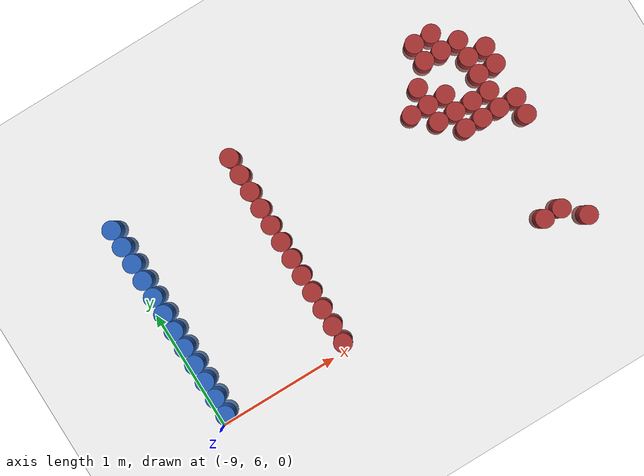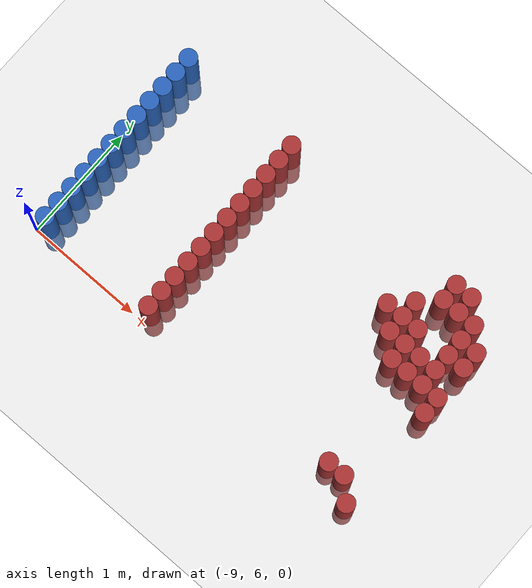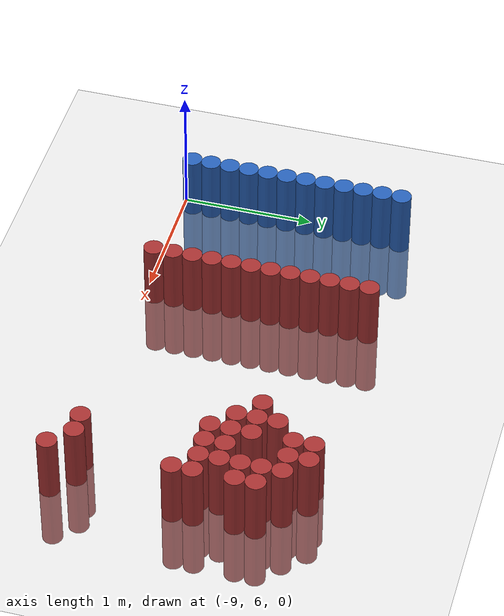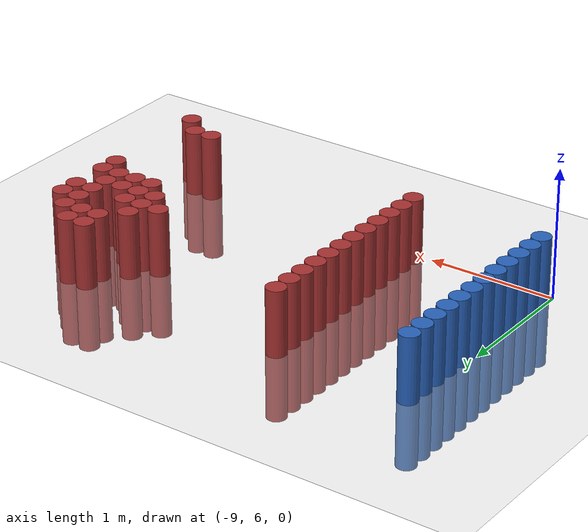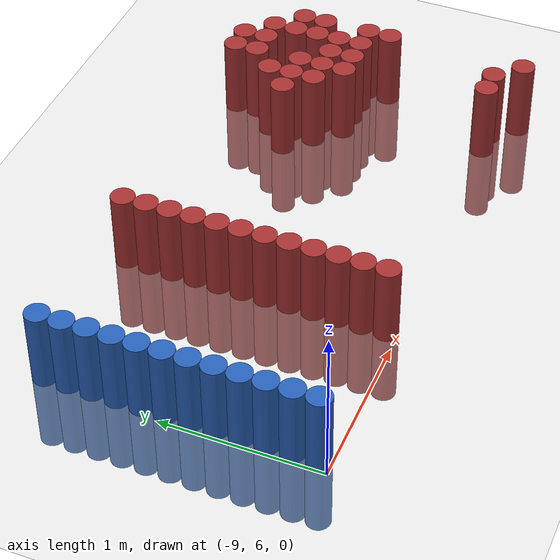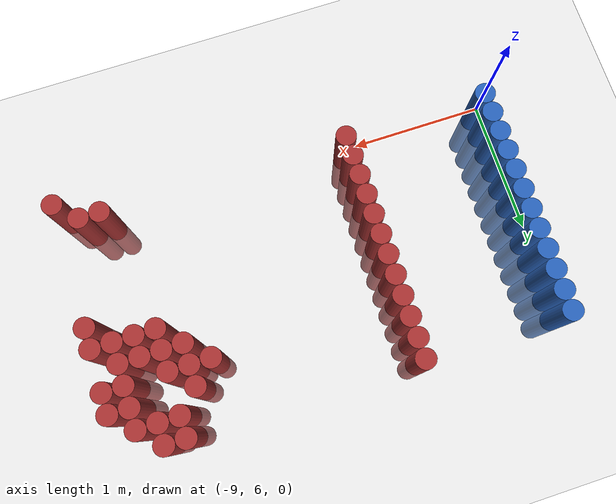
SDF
<sdf version="1.6">
 <world name="default">
  <model name="ground_plane">
   <static>1</static>
   <link name="link">
    <collision name="collision">
     <geometry><plane><normal>0 0 1</normal><size>100 100</size></plane></geometry>
     <surface><friction><ode><mu>100</mu><mu2>50</mu2></ode></friction></surface>
    </collision>
    <visual name="visual">
     <cast_shadows>0</cast_shadows>
     <geometry><plane><normal>0 0 1</normal><size>100 100</size></plane></geometry>
     <material>
      <script><uri>file://media/materials/scripts/gazebo.material</uri><name>Gazebo/Grey</name></script>
     </material>
    </visual>
   </link>
  </model>
  <model name="unit_cylinder_131">
   <static>1</static>
   <pose>-8.925000 6.075000 0.000000 0.000000 0.000000 0.000000</pose>
   <link name="link">
    <inertial>
     <mass>1</mass>
     <inertia><ixx>0.145833</ixx><ixy>0</ixy><ixz>0</ixz><iyy>0.145833</iyy><iyz>0</iyz><izz>0.125</izz></inertia>
    </inertial>
    <collision name="collision">
     <geometry><cylinder><radius>0.075000</radius><length>1</length></cylinder></geometry>
    </collision>
    <visual name="visual">
     <geometry><cylinder><radius>0.075000</radius><length>1</length></cylinder></geometry>
     <material>
      <ambient>0.152000 0.379000 0.720000 1</ambient>
      <diffuse>0.152000 0.379000 0.720000 1</diffuse>
     </material>
     <material>
      <script><name>Gazebo/Grey</name><uri>file://media/materials/scripts/gazebo.material</uri></script>
     </material>
    </visual>
   </link>
  </model>
  <model name="unit_cylinder_132">
   <static>1</static>
   <pose>-8.925000 6.225000 0.000000 0.000000 0.000000 0.000000</pose>
   <link name="link">
    <inertial>
     <mass>1</mass>
     <inertia><ixx>0.145833</ixx><ixy>0</ixy><ixz>0</ixz><iyy>0.145833</iyy><iyz>0</iyz><izz>0.125</izz></inertia>
    </inertial>
    <collision name="collision">
     <geometry><cylinder><radius>0.075000</radius><length>1</length></cylinder></geometry>
    </collision>
    <visual name="visual">
     <geometry><cylinder><radius>0.075000</radius><length>1</length></cylinder></geometry>
     <material>
      <ambient>0.152000 0.379000 0.720000 1</ambient>
      <diffuse>0.152000 0.379000 0.720000 1</diffuse>
     </material>
     <material>
      <script><name>Gazebo/Grey</name><uri>file://media/materials/scripts/gazebo.material</uri></script>
     </material>
    </visual>
   </link>
  </model>
  <model name="unit_cylinder_133">
   <static>1</static>
   <pose>-8.925000 6.375000 0.000000 0.000000 0.000000 0.000000</pose>
   <link name="link">
    <inertial>
     <mass>1</mass>
     <inertia><ixx>0.145833</ixx><ixy>0</ixy><ixz>0</ixz><iyy>0.145833</iyy><iyz>0</iyz><izz>0.125</izz></inertia>
    </inertial>
    <collision name="collision">
     <geometry><cylinder><radius>0.075000</radius><length>1</length></cylinder></geometry>
    </collision>
    <visual name="visual">
     <geometry><cylinder><radius>0.075000</radius><length>1</length></cylinder></geometry>
     <material>
      <ambient>0.152000 0.379000 0.720000 1</ambient>
      <diffuse>0.152000 0.379000 0.720000 1</diffuse>
     </material>
     <material>
      <script><name>Gazebo/Grey</name><uri>file://media/materials/scripts/gazebo.material</uri></script>
     </material>
    </visual>
   </link>
  </model>
  <model name="unit_cylinder_134">
   <static>1</static>
   <pose>-8.925000 6.525000 0.000000 0.000000 0.000000 0.000000</pose>
   <link name="link">
    <inertial>
     <mass>1</mass>
     <inertia><ixx>0.145833</ixx><ixy>0</ixy><ixz>0</ixz><iyy>0.145833</iyy><iyz>0</iyz><izz>0.125</izz></inertia>
    </inertial>
    <collision name="collision">
     <geometry><cylinder><radius>0.075000</radius><length>1</length></cylinder></geometry>
    </collision>
    <visual name="visual">
     <geometry><cylinder><radius>0.075000</radius><length>1</length></cylinder></geometry>
     <material>
      <ambient>0.152000 0.379000 0.720000 1</ambient>
      <diffuse>0.152000 0.379000 0.720000 1</diffuse>
     </material>
     <material>
      <script><name>Gazebo/Grey</name><uri>file://media/materials/scripts/gazebo.material</uri></script>
     </material>
    </visual>
   </link>
  </model>
  <model name="unit_cylinder_135">
   <static>1</static>
   <pose>-8.925000 6.675000 0.000000 0.000000 0.000000 0.000000</pose>
   <link name="link">
    <inertial>
     <mass>1</mass>
     <inertia><ixx>0.145833</ixx><ixy>0</ixy><ixz>0</ixz><iyy>0.145833</iyy><iyz>0</iyz><izz>0.125</izz></inertia>
    </inertial>
    <collision name="collision">
     <geometry><cylinder><radius>0.075000</radius><length>1</length></cylinder></geometry>
    </collision>
    <visual name="visual">
     <geometry><cylinder><radius>0.075000</radius><length>1</length></cylinder></geometry>
     <material>
      <ambient>0.152000 0.379000 0.720000 1</ambient>
      <diffuse>0.152000 0.379000 0.720000 1</diffuse>
     </material>
     <material>
      <script><name>Gazebo/Grey</name><uri>file://media/materials/scripts/gazebo.material</uri></script>
     </material>
    </visual>
   </link>
  </model>
  <model name="unit_cylinder_136">
   <static>1</static>
   <pose>-8.925000 6.825000 0.000000 0.000000 0.000000 0.000000</pose>
   <link name="link">
    <inertial>
     <mass>1</mass>
     <inertia><ixx>0.145833</ixx><ixy>0</ixy><ixz>0</ixz><iyy>0.145833</iyy><iyz>0</iyz><izz>0.125</izz></inertia>
    </inertial>
    <collision name="collision">
     <geometry><cylinder><radius>0.075000</radius><length>1</length></cylinder></geometry>
    </collision>
    <visual name="visual">
     <geometry><cylinder><radius>0.075000</radius><length>1</length></cylinder></geometry>
     <material>
      <ambient>0.152000 0.379000 0.720000 1</ambient>
      <diffuse>0.152000 0.379000 0.720000 1</diffuse>
     </material>
     <material>
      <script><name>Gazebo/Grey</name><uri>file://media/materials/scripts/gazebo.material</uri></script>
     </material>
    </visual>
   </link>
  </model>
  <model name="unit_cylinder_137">
   <static>1</static>
   <pose>-8.925000 6.975000 0.000000 0.000000 0.000000 0.000000</pose>
   <link name="link">
    <inertial>
     <mass>1</mass>
     <inertia><ixx>0.145833</ixx><ixy>0</ixy><ixz>0</ixz><iyy>0.145833</iyy><iyz>0</iyz><izz>0.125</izz></inertia>
    </inertial>
    <collision name="collision">
     <geometry><cylinder><radius>0.075000</radius><length>1</length></cylinder></geometry>
    </collision>
    <visual name="visual">
     <geometry><cylinder><radius>0.075000</radius><length>1</length></cylinder></geometry>
     <material>
      <ambient>0.152000 0.379000 0.720000 1</ambient>
      <diffuse>0.152000 0.379000 0.720000 1</diffuse>
     </material>
     <material>
      <script><name>Gazebo/Grey</name><uri>file://media/materials/scripts/gazebo.material</uri></script>
     </material>
    </visual>
   </link>
  </model>
  <model name="unit_cylinder_138">
   <static>1</static>
   <pose>-8.925000 7.125000 0.000000 0.000000 0.000000 0.000000</pose>
   <link name="link">
    <inertial>
     <mass>1</mass>
     <inertia><ixx>0.145833</ixx><ixy>0</ixy><ixz>0</ixz><iyy>0.145833</iyy><iyz>0</iyz><izz>0.125</izz></inertia>
    </inertial>
    <collision name="collision">
     <geometry><cylinder><radius>0.075000</radius><length>1</length></cylinder></geometry>
    </collision>
    <visual name="visual">
     <geometry><cylinder><radius>0.075000</radius><length>1</length></cylinder></geometry>
     <material>
      <ambient>0.152000 0.379000 0.720000 1</ambient>
      <diffuse>0.152000 0.379000 0.720000 1</diffuse>
     </material>
     <material>
      <script><name>Gazebo/Grey</name><uri>file://media/materials/scripts/gazebo.material</uri></script>
     </material>
    </visual>
   </link>
  </model>
  <model name="unit_cylinder_139">
   <static>1</static>
   <pose>-8.925000 7.275000 0.000000 0.000000 0.000000 0.000000</pose>
   <link name="link">
    <inertial>
     <mass>1</mass>
     <inertia><ixx>0.145833</ixx><ixy>0</ixy><ixz>0</ixz><iyy>0.145833</iyy><iyz>0</iyz><izz>0.125</izz></inertia>
    </inertial>
    <collision name="collision">
     <geometry><cylinder><radius>0.075000</radius><length>1</length></cylinder></geometry>
    </collision>
    <visual name="visual">
     <geometry><cylinder><radius>0.075000</radius><length>1</length></cylinder></geometry>
     <material>
      <ambient>0.152000 0.379000 0.720000 1</ambient>
      <diffuse>0.152000 0.379000 0.720000 1</diffuse>
     </material>
     <material>
      <script><name>Gazebo/Grey</name><uri>file://media/materials/scripts/gazebo.material</uri></script>
     </material>
    </visual>
   </link>
  </model>
  <model name="unit_cylinder_140">
   <static>1</static>
   <pose>-8.925000 7.425000 0.000000 0.000000 0.000000 0.000000</pose>
   <link name="link">
    <inertial>
     <mass>1</mass>
     <inertia><ixx>0.145833</ixx><ixy>0</ixy><ixz>0</ixz><iyy>0.145833</iyy><iyz>0</iyz><izz>0.125</izz></inertia>
    </inertial>
    <collision name="collision">
     <geometry><cylinder><radius>0.075000</radius><length>1</length></cylinder></geometry>
    </collision>
    <visual name="visual">
     <geometry><cylinder><radius>0.075000</radius><length>1</length></cylinder></geometry>
     <material>
      <ambient>0.152000 0.379000 0.720000 1</ambient>
      <diffuse>0.152000 0.379000 0.720000 1</diffuse>
     </material>
     <material>
      <script><name>Gazebo/Grey</name><uri>file://media/materials/scripts/gazebo.material</uri></script>
     </material>
    </visual>
   </link>
  </model>
  <model name="unit_cylinder_141">
   <static>1</static>
   <pose>-8.925000 7.575000 0.000000 0.000000 0.000000 0.000000</pose>
   <link name="link">
    <inertial>
     <mass>1</mass>
     <inertia><ixx>0.145833</ixx><ixy>0</ixy><ixz>0</ixz><iyy>0.145833</iyy><iyz>0</iyz><izz>0.125</izz></inertia>
    </inertial>
    <collision name="collision">
     <geometry><cylinder><radius>0.075000</radius><length>1</length></cylinder></geometry>
    </collision>
    <visual name="visual">
     <geometry><cylinder><radius>0.075000</radius><length>1</length></cylinder></geometry>
     <material>
      <ambient>0.152000 0.379000 0.720000 1</ambient>
      <diffuse>0.152000 0.379000 0.720000 1</diffuse>
     </material>
     <material>
      <script><name>Gazebo/Grey</name><uri>file://media/materials/scripts/gazebo.material</uri></script>
     </material>
    </visual>
   </link>
  </model>
  <model name="unit_cylinder_142">
   <static>1</static>
   <pose>-8.925000 7.725000 0.000000 0.000000 0.000000 0.000000</pose>
   <link name="link">
    <inertial>
     <mass>1</mass>
     <inertia><ixx>0.145833</ixx><ixy>0</ixy><ixz>0</ixz><iyy>0.145833</iyy><iyz>0</iyz><izz>0.125</izz></inertia>
    </inertial>
    <collision name="collision">
     <geometry><cylinder><radius>0.075000</radius><length>1</length></cylinder></geometry>
    </collision>
    <visual name="visual">
     <geometry><cylinder><radius>0.075000</radius><length>1</length></cylinder></geometry>
     <material>
      <ambient>0.152000 0.379000 0.720000 1</ambient>
      <diffuse>0.152000 0.379000 0.720000 1</diffuse>
     </material>
     <material>
      <script><name>Gazebo/Grey</name><uri>file://media/materials/scripts/gazebo.material</uri></script>
     </material>
    </visual>
   </link>
  </model>
  <model name="unit_cylinder_180">
   <static>1</static>
   <pose>-7.875000 6.075000 0.000000 0.000000 0.000000 0.000000</pose>
   <link name="link">
    <inertial>
     <mass>1</mass>
     <inertia><ixx>0.145833</ixx><ixy>0</ixy><ixz>0</ixz><iyy>0.145833</iyy><iyz>0</iyz><izz>0.125</izz></inertia>
    </inertial>
    <collision name="collision">
     <geometry><cylinder><radius>0.075000</radius><length>1</length></cylinder></geometry>
    </collision>
    <visual name="visual">
     <geometry><cylinder><radius>0.075000</radius><length>1</length></cylinder></geometry>
     <material>
      <ambient>0.648000 0.192000 0.192000 1</ambient>
      <diffuse>0.648000 0.192000 0.192000 1</diffuse>
     </material>
     <material>
      <script><name>Gazebo/Grey</name><uri>file://media/materials/scripts/gazebo.material</uri></script>
     </material>
    </visual>
   </link>
  </model>
  <model name="unit_cylinder_181">
   <static>1</static>
   <pose>-7.875000 6.225000 0.000000 0.000000 0.000000 0.000000</pose>
   <link name="link">
    <inertial>
     <mass>1</mass>
     <inertia><ixx>0.145833</ixx><ixy>0</ixy><ixz>0</ixz><iyy>0.145833</iyy><iyz>0</iyz><izz>0.125</izz></inertia>
    </inertial>
    <collision name="collision">
     <geometry><cylinder><radius>0.075000</radius><length>1</length></cylinder></geometry>
    </collision>
    <visual name="visual">
     <geometry><cylinder><radius>0.075000</radius><length>1</length></cylinder></geometry>
     <material>
      <ambient>0.648000 0.192000 0.192000 1</ambient>
      <diffuse>0.648000 0.192000 0.192000 1</diffuse>
     </material>
     <material>
      <script><name>Gazebo/Grey</name><uri>file://media/materials/scripts/gazebo.material</uri></script>
     </material>
    </visual>
   </link>
  </model>
  <model name="unit_cylinder_182">
   <static>1</static>
   <pose>-7.875000 6.375000 0.000000 0.000000 0.000000 0.000000</pose>
   <link name="link">
    <inertial>
     <mass>1</mass>
     <inertia><ixx>0.145833</ixx><ixy>0</ixy><ixz>0</ixz><iyy>0.145833</iyy><iyz>0</iyz><izz>0.125</izz></inertia>
    </inertial>
    <collision name="collision">
     <geometry><cylinder><radius>0.075000</radius><length>1</length></cylinder></geometry>
    </collision>
    <visual name="visual">
     <geometry><cylinder><radius>0.075000</radius><length>1</length></cylinder></geometry>
     <material>
      <ambient>0.648000 0.192000 0.192000 1</ambient>
      <diffuse>0.648000 0.192000 0.192000 1</diffuse>
     </material>
     <material>
      <script><name>Gazebo/Grey</name><uri>file://media/materials/scripts/gazebo.material</uri></script>
     </material>
    </visual>
   </link>
  </model>
  <model name="unit_cylinder_183">
   <static>1</static>
   <pose>-7.875000 6.525000 0.000000 0.000000 0.000000 0.000000</pose>
   <link name="link">
    <inertial>
     <mass>1</mass>
     <inertia><ixx>0.145833</ixx><ixy>0</ixy><ixz>0</ixz><iyy>0.145833</iyy><iyz>0</iyz><izz>0.125</izz></inertia>
    </inertial>
    <collision name="collision">
     <geometry><cylinder><radius>0.075000</radius><length>1</length></cylinder></geometry>
    </collision>
    <visual name="visual">
     <geometry><cylinder><radius>0.075000</radius><length>1</length></cylinder></geometry>
     <material>
      <ambient>0.648000 0.192000 0.192000 1</ambient>
      <diffuse>0.648000 0.192000 0.192000 1</diffuse>
     </material>
     <material>
      <script><name>Gazebo/Grey</name><uri>file://media/materials/scripts/gazebo.material</uri></script>
     </material>
    </visual>
   </link>
  </model>
  <model name="unit_cylinder_184">
   <static>1</static>
   <pose>-7.875000 6.675000 0.000000 0.000000 0.000000 0.000000</pose>
   <link name="link">
    <inertial>
     <mass>1</mass>
     <inertia><ixx>0.145833</ixx><ixy>0</ixy><ixz>0</ixz><iyy>0.145833</iyy><iyz>0</iyz><izz>0.125</izz></inertia>
    </inertial>
    <collision name="collision">
     <geometry><cylinder><radius>0.075000</radius><length>1</length></cylinder></geometry>
    </collision>
    <visual name="visual">
     <geometry><cylinder><radius>0.075000</radius><length>1</length></cylinder></geometry>
     <material>
      <ambient>0.648000 0.192000 0.192000 1</ambient>
      <diffuse>0.648000 0.192000 0.192000 1</diffuse>
     </material>
     <material>
      <script><name>Gazebo/Grey</name><uri>file://media/materials/scripts/gazebo.material</uri></script>
     </material>
    </visual>
   </link>
  </model>
  <model name="unit_cylinder_185">
   <static>1</static>
   <pose>-7.875000 6.825000 0.000000 0.000000 0.000000 0.000000</pose>
   <link name="link">
    <inertial>
     <mass>1</mass>
     <inertia><ixx>0.145833</ixx><ixy>0</ixy><ixz>0</ixz><iyy>0.145833</iyy><iyz>0</iyz><izz>0.125</izz></inertia>
    </inertial>
    <collision name="collision">
     <geometry><cylinder><radius>0.075000</radius><length>1</length></cylinder></geometry>
    </collision>
    <visual name="visual">
     <geometry><cylinder><radius>0.075000</radius><length>1</length></cylinder></geometry>
     <material>
      <ambient>0.648000 0.192000 0.192000 1</ambient>
      <diffuse>0.648000 0.192000 0.192000 1</diffuse>
     </material>
     <material>
      <script><name>Gazebo/Grey</name><uri>file://media/materials/scripts/gazebo.material</uri></script>
     </material>
    </visual>
   </link>
  </model>
  <model name="unit_cylinder_186">
   <static>1</static>
   <pose>-7.875000 6.975000 0.000000 0.000000 0.000000 0.000000</pose>
   <link name="link">
    <inertial>
     <mass>1</mass>
     <inertia><ixx>0.145833</ixx><ixy>0</ixy><ixz>0</ixz><iyy>0.145833</iyy><iyz>0</iyz><izz>0.125</izz></inertia>
    </inertial>
    <collision name="collision">
     <geometry><cylinder><radius>0.075000</radius><length>1</length></cylinder></geometry>
    </collision>
    <visual name="visual">
     <geometry><cylinder><radius>0.075000</radius><length>1</length></cylinder></geometry>
     <material>
      <ambient>0.648000 0.192000 0.192000 1</ambient>
      <diffuse>0.648000 0.192000 0.192000 1</diffuse>
     </material>
     <material>
      <script><name>Gazebo/Grey</name><uri>file://media/materials/scripts/gazebo.material</uri></script>
     </material>
    </visual>
   </link>
  </model>
  <model name="unit_cylinder_187">
   <static>1</static>
   <pose>-7.875000 7.125000 0.000000 0.000000 0.000000 0.000000</pose>
   <link name="link">
    <inertial>
     <mass>1</mass>
     <inertia><ixx>0.145833</ixx><ixy>0</ixy><ixz>0</ixz><iyy>0.145833</iyy><iyz>0</iyz><izz>0.125</izz></inertia>
    </inertial>
    <collision name="collision">
     <geometry><cylinder><radius>0.075000</radius><length>1</length></cylinder></geometry>
    </collision>
    <visual name="visual">
     <geometry><cylinder><radius>0.075000</radius><length>1</length></cylinder></geometry>
     <material>
      <ambient>0.648000 0.192000 0.192000 1</ambient>
      <diffuse>0.648000 0.192000 0.192000 1</diffuse>
     </material>
     <material>
      <script><name>Gazebo/Grey</name><uri>file://media/materials/scripts/gazebo.material</uri></script>
     </material>
    </visual>
   </link>
  </model>
  <model name="unit_cylinder_188">
   <static>1</static>
   <pose>-7.875000 7.275000 0.000000 0.000000 0.000000 0.000000</pose>
   <link name="link">
    <inertial>
     <mass>1</mass>
     <inertia><ixx>0.145833</ixx><ixy>0</ixy><ixz>0</ixz><iyy>0.145833</iyy><iyz>0</iyz><izz>0.125</izz></inertia>
    </inertial>
    <collision name="collision">
     <geometry><cylinder><radius>0.075000</radius><length>1</length></cylinder></geometry>
    </collision>
    <visual name="visual">
     <geometry><cylinder><radius>0.075000</radius><length>1</length></cylinder></geometry>
     <material>
      <ambient>0.648000 0.192000 0.192000 1</ambient>
      <diffuse>0.648000 0.192000 0.192000 1</diffuse>
     </material>
     <material>
      <script><name>Gazebo/Grey</name><uri>file://media/materials/scripts/gazebo.material</uri></script>
     </material>
    </visual>
   </link>
  </model>
  <model name="unit_cylinder_189">
   <static>1</static>
   <pose>-7.875000 7.425000 0.000000 0.000000 0.000000 0.000000</pose>
   <link name="link">
    <inertial>
     <mass>1</mass>
     <inertia><ixx>0.145833</ixx><ixy>0</ixy><ixz>0</ixz><iyy>0.145833</iyy><iyz>0</iyz><izz>0.125</izz></inertia>
    </inertial>
    <collision name="collision">
     <geometry><cylinder><radius>0.075000</radius><length>1</length></cylinder></geometry>
    </collision>
    <visual name="visual">
     <geometry><cylinder><radius>0.075000</radius><length>1</length></cylinder></geometry>
     <material>
      <ambient>0.648000 0.192000 0.192000 1</ambient>
      <diffuse>0.648000 0.192000 0.192000 1</diffuse>
     </material>
     <material>
      <script><name>Gazebo/Grey</name><uri>file://media/materials/scripts/gazebo.material</uri></script>
     </material>
    </visual>
   </link>
  </model>
  <model name="unit_cylinder_190">
   <static>1</static>
   <pose>-7.875000 7.575000 0.000000 0.000000 0.000000 0.000000</pose>
   <link name="link">
    <inertial>
     <mass>1</mass>
     <inertia><ixx>0.145833</ixx><ixy>0</ixy><ixz>0</ixz><iyy>0.145833</iyy><iyz>0</iyz><izz>0.125</izz></inertia>
    </inertial>
    <collision name="collision">
     <geometry><cylinder><radius>0.075000</radius><length>1</length></cylinder></geometry>
    </collision>
    <visual name="visual">
     <geometry><cylinder><radius>0.075000</radius><length>1</length></cylinder></geometry>
     <material>
      <ambient>0.648000 0.192000 0.192000 1</ambient>
      <diffuse>0.648000 0.192000 0.192000 1</diffuse>
     </material>
     <material>
      <script><name>Gazebo/Grey</name><uri>file://media/materials/scripts/gazebo.material</uri></script>
     </material>
    </visual>
   </link>
  </model>
  <model name="unit_cylinder_191">
   <static>1</static>
   <pose>-7.875000 7.725000 0.000000 0.000000 0.000000 0.000000</pose>
   <link name="link">
    <inertial>
     <mass>1</mass>
     <inertia><ixx>0.145833</ixx><ixy>0</ixy><ixz>0</ixz><iyy>0.145833</iyy><iyz>0</iyz><izz>0.125</izz></inertia>
    </inertial>
    <collision name="collision">
     <geometry><cylinder><radius>0.075000</radius><length>1</length></cylinder></geometry>
    </collision>
    <visual name="visual">
     <geometry><cylinder><radius>0.075000</radius><length>1</length></cylinder></geometry>
     <material>
      <ambient>0.648000 0.192000 0.192000 1</ambient>
      <diffuse>0.648000 0.192000 0.192000 1</diffuse>
     </material>
     <material>
      <script><name>Gazebo/Grey</name><uri>file://media/materials/scripts/gazebo.material</uri></script>
     </material>
    </visual>
   </link>
  </model>
  <model name="unit_cylinder_205">
   <static>1</static>
   <pose>-6.525000 7.275000 0.000000 0.000000 0.000000 0.000000</pose>
   <link name="link">
    <inertial>
     <mass>1</mass>
     <inertia><ixx>0.145833</ixx><ixy>0</ixy><ixz>0</ixz><iyy>0.145833</iyy><iyz>0</iyz><izz>0.125</izz></inertia>
    </inertial>
    <collision name="collision">
     <geometry><cylinder><radius>0.075000</radius><length>1</length></cylinder></geometry>
    </collision>
    <visual name="visual">
     <geometry><cylinder><radius>0.075000</radius><length>1</length></cylinder></geometry>
     <material>
      <ambient>0.648000 0.192000 0.192000 1</ambient>
      <diffuse>0.648000 0.192000 0.192000 1</diffuse>
     </material>
     <material>
      <script><name>Gazebo/Grey</name><uri>file://media/materials/scripts/gazebo.material</uri></script>
     </material>
    </visual>
   </link>
  </model>
  <model name="unit_cylinder_212">
   <static>1</static>
   <pose>-6.375000 7.125000 0.000000 0.000000 0.000000 0.000000</pose>
   <link name="link">
    <inertial>
     <mass>1</mass>
     <inertia><ixx>0.145833</ixx><ixy>0</ixy><ixz>0</ixz><iyy>0.145833</iyy><iyz>0</iyz><izz>0.125</izz></inertia>
    </inertial>
    <collision name="collision">
     <geometry><cylinder><radius>0.075000</radius><length>1</length></cylinder></geometry>
    </collision>
    <visual name="visual">
     <geometry><cylinder><radius>0.075000</radius><length>1</length></cylinder></geometry>
     <material>
      <ambient>0.648000 0.192000 0.192000 1</ambient>
      <diffuse>0.648000 0.192000 0.192000 1</diffuse>
     </material>
     <material>
      <script><name>Gazebo/Grey</name><uri>file://media/materials/scripts/gazebo.material</uri></script>
     </material>
    </visual>
   </link>
  </model>
  <model name="unit_cylinder_213">
   <static>1</static>
   <pose>-6.375000 7.275000 0.000000 0.000000 0.000000 0.000000</pose>
   <link name="link">
    <inertial>
     <mass>1</mass>
     <inertia><ixx>0.145833</ixx><ixy>0</ixy><ixz>0</ixz><iyy>0.145833</iyy><iyz>0</iyz><izz>0.125</izz></inertia>
    </inertial>
    <collision name="collision">
     <geometry><cylinder><radius>0.075000</radius><length>1</length></cylinder></geometry>
    </collision>
    <visual name="visual">
     <geometry><cylinder><radius>0.075000</radius><length>1</length></cylinder></geometry>
     <material>
      <ambient>0.648000 0.192000 0.192000 1</ambient>
      <diffuse>0.648000 0.192000 0.192000 1</diffuse>
     </material>
     <material>
      <script><name>Gazebo/Grey</name><uri>file://media/materials/scripts/gazebo.material</uri></script>
     </material>
    </visual>
   </link>
  </model>
  <model name="unit_cylinder_214">
   <static>1</static>
   <pose>-6.375000 7.425000 0.000000 0.000000 0.000000 0.000000</pose>
   <link name="link">
    <inertial>
     <mass>1</mass>
     <inertia><ixx>0.145833</ixx><ixy>0</ixy><ixz>0</ixz><iyy>0.145833</iyy><iyz>0</iyz><izz>0.125</izz></inertia>
    </inertial>
    <collision name="collision">
     <geometry><cylinder><radius>0.075000</radius><length>1</length></cylinder></geometry>
    </collision>
    <visual name="visual">
     <geometry><cylinder><radius>0.075000</radius><length>1</length></cylinder></geometry>
     <material>
      <ambient>0.648000 0.192000 0.192000 1</ambient>
      <diffuse>0.648000 0.192000 0.192000 1</diffuse>
     </material>
     <material>
      <script><name>Gazebo/Grey</name><uri>file://media/materials/scripts/gazebo.material</uri></script>
     </material>
    </visual>
   </link>
  </model>
  <model name="unit_cylinder_222">
   <static>1</static>
   <pose>-6.225000 6.975000 0.000000 0.000000 0.000000 0.000000</pose>
   <link name="link">
    <inertial>
     <mass>1</mass>
     <inertia><ixx>0.145833</ixx><ixy>0</ixy><ixz>0</ixz><iyy>0.145833</iyy><iyz>0</iyz><izz>0.125</izz></inertia>
    </inertial>
    <collision name="collision">
     <geometry><cylinder><radius>0.075000</radius><length>1</length></cylinder></geometry>
    </collision>
    <visual name="visual">
     <geometry><cylinder><radius>0.075000</radius><length>1</length></cylinder></geometry>
     <material>
      <ambient>0.648000 0.192000 0.192000 1</ambient>
      <diffuse>0.648000 0.192000 0.192000 1</diffuse>
     </material>
     <material>
      <script><name>Gazebo/Grey</name><uri>file://media/materials/scripts/gazebo.material</uri></script>
     </material>
    </visual>
   </link>
  </model>
  <model name="unit_cylinder_223">
   <static>1</static>
   <pose>-6.225000 7.125000 0.000000 0.000000 0.000000 0.000000</pose>
   <link name="link">
    <inertial>
     <mass>1</mass>
     <inertia><ixx>0.145833</ixx><ixy>0</ixy><ixz>0</ixz><iyy>0.145833</iyy><iyz>0</iyz><izz>0.125</izz></inertia>
    </inertial>
    <collision name="collision">
     <geometry><cylinder><radius>0.075000</radius><length>1</length></cylinder></geometry>
    </collision>
    <visual name="visual">
     <geometry><cylinder><radius>0.075000</radius><length>1</length></cylinder></geometry>
     <material>
      <ambient>0.648000 0.192000 0.192000 1</ambient>
      <diffuse>0.648000 0.192000 0.192000 1</diffuse>
     </material>
     <material>
      <script><name>Gazebo/Grey</name><uri>file://media/materials/scripts/gazebo.material</uri></script>
     </material>
    </visual>
   </link>
  </model>
  <model name="unit_cylinder_224">
   <static>1</static>
   <pose>-6.225000 7.275000 0.000000 0.000000 0.000000 0.000000</pose>
   <link name="link">
    <inertial>
     <mass>1</mass>
     <inertia><ixx>0.145833</ixx><ixy>0</ixy><ixz>0</ixz><iyy>0.145833</iyy><iyz>0</iyz><izz>0.125</izz></inertia>
    </inertial>
    <collision name="collision">
     <geometry><cylinder><radius>0.075000</radius><length>1</length></cylinder></geometry>
    </collision>
    <visual name="visual">
     <geometry><cylinder><radius>0.075000</radius><length>1</length></cylinder></geometry>
     <material>
      <ambient>0.648000 0.192000 0.192000 1</ambient>
      <diffuse>0.648000 0.192000 0.192000 1</diffuse>
     </material>
     <material>
      <script><name>Gazebo/Grey</name><uri>file://media/materials/scripts/gazebo.material</uri></script>
     </material>
    </visual>
   </link>
  </model>
  <model name="unit_cylinder_225">
   <static>1</static>
   <pose>-6.225000 7.575000 0.000000 0.000000 0.000000 0.000000</pose>
   <link name="link">
    <inertial>
     <mass>1</mass>
     <inertia><ixx>0.145833</ixx><ixy>0</ixy><ixz>0</ixz><iyy>0.145833</iyy><iyz>0</iyz><izz>0.125</izz></inertia>
    </inertial>
    <collision name="collision">
     <geometry><cylinder><radius>0.075000</radius><length>1</length></cylinder></geometry>
    </collision>
    <visual name="visual">
     <geometry><cylinder><radius>0.075000</radius><length>1</length></cylinder></geometry>
     <material>
      <ambient>0.648000 0.192000 0.192000 1</ambient>
      <diffuse>0.648000 0.192000 0.192000 1</diffuse>
     </material>
     <material>
      <script><name>Gazebo/Grey</name><uri>file://media/materials/scripts/gazebo.material</uri></script>
     </material>
    </visual>
   </link>
  </model>
  <model name="unit_cylinder_226">
   <static>1</static>
   <pose>-6.225000 7.725000 0.000000 0.000000 0.000000 0.000000</pose>
   <link name="link">
    <inertial>
     <mass>1</mass>
     <inertia><ixx>0.145833</ixx><ixy>0</ixy><ixz>0</ixz><iyy>0.145833</iyy><iyz>0</iyz><izz>0.125</izz></inertia>
    </inertial>
    <collision name="collision">
     <geometry><cylinder><radius>0.075000</radius><length>1</length></cylinder></geometry>
    </collision>
    <visual name="visual">
     <geometry><cylinder><radius>0.075000</radius><length>1</length></cylinder></geometry>
     <material>
      <ambient>0.648000 0.192000 0.192000 1</ambient>
      <diffuse>0.648000 0.192000 0.192000 1</diffuse>
     </material>
     <material>
      <script><name>Gazebo/Grey</name><uri>file://media/materials/scripts/gazebo.material</uri></script>
     </material>
    </visual>
   </link>
  </model>
  <model name="unit_cylinder_230">
   <static>1</static>
   <pose>-6.075000 6.075000 0.000000 0.000000 0.000000 0.000000</pose>
   <link name="link">
    <inertial>
     <mass>1</mass>
     <inertia><ixx>0.145833</ixx><ixy>0</ixy><ixz>0</ixz><iyy>0.145833</iyy><iyz>0</iyz><izz>0.125</izz></inertia>
    </inertial>
    <collision name="collision">
     <geometry><cylinder><radius>0.075000</radius><length>1</length></cylinder></geometry>
    </collision>
    <visual name="visual">
     <geometry><cylinder><radius>0.075000</radius><length>1</length></cylinder></geometry>
     <material>
      <ambient>0.648000 0.192000 0.192000 1</ambient>
      <diffuse>0.648000 0.192000 0.192000 1</diffuse>
     </material>
     <material>
      <script><name>Gazebo/Grey</name><uri>file://media/materials/scripts/gazebo.material</uri></script>
     </material>
    </visual>
   </link>
  </model>
  <model name="unit_cylinder_231">
   <static>1</static>
   <pose>-6.075000 6.975000 0.000000 0.000000 0.000000 0.000000</pose>
   <link name="link">
    <inertial>
     <mass>1</mass>
     <inertia><ixx>0.145833</ixx><ixy>0</ixy><ixz>0</ixz><iyy>0.145833</iyy><iyz>0</iyz><izz>0.125</izz></inertia>
    </inertial>
    <collision name="collision">
     <geometry><cylinder><radius>0.075000</radius><length>1</length></cylinder></geometry>
    </collision>
    <visual name="visual">
     <geometry><cylinder><radius>0.075000</radius><length>1</length></cylinder></geometry>
     <material>
      <ambient>0.648000 0.192000 0.192000 1</ambient>
      <diffuse>0.648000 0.192000 0.192000 1</diffuse>
     </material>
     <material>
      <script><name>Gazebo/Grey</name><uri>file://media/materials/scripts/gazebo.material</uri></script>
     </material>
    </visual>
   </link>
  </model>
  <model name="unit_cylinder_232">
   <static>1</static>
   <pose>-6.075000 7.125000 0.000000 0.000000 0.000000 0.000000</pose>
   <link name="link">
    <inertial>
     <mass>1</mass>
     <inertia><ixx>0.145833</ixx><ixy>0</ixy><ixz>0</ixz><iyy>0.145833</iyy><iyz>0</iyz><izz>0.125</izz></inertia>
    </inertial>
    <collision name="collision">
     <geometry><cylinder><radius>0.075000</radius><length>1</length></cylinder></geometry>
    </collision>
    <visual name="visual">
     <geometry><cylinder><radius>0.075000</radius><length>1</length></cylinder></geometry>
     <material>
      <ambient>0.648000 0.192000 0.192000 1</ambient>
      <diffuse>0.648000 0.192000 0.192000 1</diffuse>
     </material>
     <material>
      <script><name>Gazebo/Grey</name><uri>file://media/materials/scripts/gazebo.material</uri></script>
     </material>
    </visual>
   </link>
  </model>
  <model name="unit_cylinder_233">
   <static>1</static>
   <pose>-6.075000 7.575000 0.000000 0.000000 0.000000 0.000000</pose>
   <link name="link">
    <inertial>
     <mass>1</mass>
     <inertia><ixx>0.145833</ixx><ixy>0</ixy><ixz>0</ixz><iyy>0.145833</iyy><iyz>0</iyz><izz>0.125</izz></inertia>
    </inertial>
    <collision name="collision">
     <geometry><cylinder><radius>0.075000</radius><length>1</length></cylinder></geometry>
    </collision>
    <visual name="visual">
     <geometry><cylinder><radius>0.075000</radius><length>1</length></cylinder></geometry>
     <material>
      <ambient>0.648000 0.192000 0.192000 1</ambient>
      <diffuse>0.648000 0.192000 0.192000 1</diffuse>
     </material>
     <material>
      <script><name>Gazebo/Grey</name><uri>file://media/materials/scripts/gazebo.material</uri></script>
     </material>
    </visual>
   </link>
  </model>
  <model name="unit_cylinder_234">
   <static>1</static>
   <pose>-6.075000 7.725000 0.000000 0.000000 0.000000 0.000000</pose>
   <link name="link">
    <inertial>
     <mass>1</mass>
     <inertia><ixx>0.145833</ixx><ixy>0</ixy><ixz>0</ixz><iyy>0.145833</iyy><iyz>0</iyz><izz>0.125</izz></inertia>
    </inertial>
    <collision name="collision">
     <geometry><cylinder><radius>0.075000</radius><length>1</length></cylinder></geometry>
    </collision>
    <visual name="visual">
     <geometry><cylinder><radius>0.075000</radius><length>1</length></cylinder></geometry>
     <material>
      <ambient>0.648000 0.192000 0.192000 1</ambient>
      <diffuse>0.648000 0.192000 0.192000 1</diffuse>
     </material>
     <material>
      <script><name>Gazebo/Grey</name><uri>file://media/materials/scripts/gazebo.material</uri></script>
     </material>
    </visual>
   </link>
  </model>
  <model name="unit_cylinder_241">
   <static>1</static>
   <pose>-5.925000 6.075000 0.000000 0.000000 0.000000 0.000000</pose>
   <link name="link">
    <inertial>
     <mass>1</mass>
     <inertia><ixx>0.145833</ixx><ixy>0</ixy><ixz>0</ixz><iyy>0.145833</iyy><iyz>0</iyz><izz>0.125</izz></inertia>
    </inertial>
    <collision name="collision">
     <geometry><cylinder><radius>0.075000</radius><length>1</length></cylinder></geometry>
    </collision>
    <visual name="visual">
     <geometry><cylinder><radius>0.075000</radius><length>1</length></cylinder></geometry>
     <material>
      <ambient>0.648000 0.192000 0.192000 1</ambient>
      <diffuse>0.648000 0.192000 0.192000 1</diffuse>
     </material>
     <material>
      <script><name>Gazebo/Grey</name><uri>file://media/materials/scripts/gazebo.material</uri></script>
     </material>
    </visual>
   </link>
  </model>
  <model name="unit_cylinder_242">
   <static>1</static>
   <pose>-5.925000 6.975000 0.000000 0.000000 0.000000 0.000000</pose>
   <link name="link">
    <inertial>
     <mass>1</mass>
     <inertia><ixx>0.145833</ixx><ixy>0</ixy><ixz>0</ixz><iyy>0.145833</iyy><iyz>0</iyz><izz>0.125</izz></inertia>
    </inertial>
    <collision name="collision">
     <geometry><cylinder><radius>0.075000</radius><length>1</length></cylinder></geometry>
    </collision>
    <visual name="visual">
     <geometry><cylinder><radius>0.075000</radius><length>1</length></cylinder></geometry>
     <material>
      <ambient>0.648000 0.192000 0.192000 1</ambient>
      <diffuse>0.648000 0.192000 0.192000 1</diffuse>
     </material>
     <material>
      <script><name>Gazebo/Grey</name><uri>file://media/materials/scripts/gazebo.material</uri></script>
     </material>
    </visual>
   </link>
  </model>
  <model name="unit_cylinder_243">
   <static>1</static>
   <pose>-5.925000 7.125000 0.000000 0.000000 0.000000 0.000000</pose>
   <link name="link">
    <inertial>
     <mass>1</mass>
     <inertia><ixx>0.145833</ixx><ixy>0</ixy><ixz>0</ixz><iyy>0.145833</iyy><iyz>0</iyz><izz>0.125</izz></inertia>
    </inertial>
    <collision name="collision">
     <geometry><cylinder><radius>0.075000</radius><length>1</length></cylinder></geometry>
    </collision>
    <visual name="visual">
     <geometry><cylinder><radius>0.075000</radius><length>1</length></cylinder></geometry>
     <material>
      <ambient>0.648000 0.192000 0.192000 1</ambient>
      <diffuse>0.648000 0.192000 0.192000 1</diffuse>
     </material>
     <material>
      <script><name>Gazebo/Grey</name><uri>file://media/materials/scripts/gazebo.material</uri></script>
     </material>
    </visual>
   </link>
  </model>
  <model name="unit_cylinder_244">
   <static>1</static>
   <pose>-5.925000 7.275000 0.000000 0.000000 0.000000 0.000000</pose>
   <link name="link">
    <inertial>
     <mass>1</mass>
     <inertia><ixx>0.145833</ixx><ixy>0</ixy><ixz>0</ixz><iyy>0.145833</iyy><iyz>0</iyz><izz>0.125</izz></inertia>
    </inertial>
    <collision name="collision">
     <geometry><cylinder><radius>0.075000</radius><length>1</length></cylinder></geometry>
    </collision>
    <visual name="visual">
     <geometry><cylinder><radius>0.075000</radius><length>1</length></cylinder></geometry>
     <material>
      <ambient>0.648000 0.192000 0.192000 1</ambient>
      <diffuse>0.648000 0.192000 0.192000 1</diffuse>
     </material>
     <material>
      <script><name>Gazebo/Grey</name><uri>file://media/materials/scripts/gazebo.material</uri></script>
     </material>
    </visual>
   </link>
  </model>
  <model name="unit_cylinder_245">
   <static>1</static>
   <pose>-5.925000 7.425000 0.000000 0.000000 0.000000 0.000000</pose>
   <link name="link">
    <inertial>
     <mass>1</mass>
     <inertia><ixx>0.145833</ixx><ixy>0</ixy><ixz>0</ixz><iyy>0.145833</iyy><iyz>0</iyz><izz>0.125</izz></inertia>
    </inertial>
    <collision name="collision">
     <geometry><cylinder><radius>0.075000</radius><length>1</length></cylinder></geometry>
    </collision>
    <visual name="visual">
     <geometry><cylinder><radius>0.075000</radius><length>1</length></cylinder></geometry>
     <material>
      <ambient>0.648000 0.192000 0.192000 1</ambient>
      <diffuse>0.648000 0.192000 0.192000 1</diffuse>
     </material>
     <material>
      <script><name>Gazebo/Grey</name><uri>file://media/materials/scripts/gazebo.material</uri></script>
     </material>
    </visual>
   </link>
  </model>
  <model name="unit_cylinder_246">
   <static>1</static>
   <pose>-5.925000 7.575000 0.000000 0.000000 0.000000 0.000000</pose>
   <link name="link">
    <inertial>
     <mass>1</mass>
     <inertia><ixx>0.145833</ixx><ixy>0</ixy><ixz>0</ixz><iyy>0.145833</iyy><iyz>0</iyz><izz>0.125</izz></inertia>
    </inertial>
    <collision name="collision">
     <geometry><cylinder><radius>0.075000</radius><length>1</length></cylinder></geometry>
    </collision>
    <visual name="visual">
     <geometry><cylinder><radius>0.075000</radius><length>1</length></cylinder></geometry>
     <material>
      <ambient>0.648000 0.192000 0.192000 1</ambient>
      <diffuse>0.648000 0.192000 0.192000 1</diffuse>
     </material>
     <material>
      <script><name>Gazebo/Grey</name><uri>file://media/materials/scripts/gazebo.material</uri></script>
     </material>
    </visual>
   </link>
  </model>
  <model name="unit_cylinder_251">
   <static>1</static>
   <pose>-5.775000 5.925000 0.000000 0.000000 0.000000 0.000000</pose>
   <link name="link">
    <inertial>
     <mass>1</mass>
     <inertia><ixx>0.145833</ixx><ixy>0</ixy><ixz>0</ixz><iyy>0.145833</iyy><iyz>0</iyz><izz>0.125</izz></inertia>
    </inertial>
    <collision name="collision">
     <geometry><cylinder><radius>0.075000</radius><length>1</length></cylinder></geometry>
    </collision>
    <visual name="visual">
     <geometry><cylinder><radius>0.075000</radius><length>1</length></cylinder></geometry>
     <material>
      <ambient>0.648000 0.192000 0.192000 1</ambient>
      <diffuse>0.648000 0.192000 0.192000 1</diffuse>
     </material>
     <material>
      <script><name>Gazebo/Grey</name><uri>file://media/materials/scripts/gazebo.material</uri></script>
     </material>
    </visual>
   </link>
  </model>
  <model name="unit_cylinder_252">
   <static>1</static>
   <pose>-5.775000 6.825000 0.000000 0.000000 0.000000 0.000000</pose>
   <link name="link">
    <inertial>
     <mass>1</mass>
     <inertia><ixx>0.145833</ixx><ixy>0</ixy><ixz>0</ixz><iyy>0.145833</iyy><iyz>0</iyz><izz>0.125</izz></inertia>
    </inertial>
    <collision name="collision">
     <geometry><cylinder><radius>0.075000</radius><length>1</length></cylinder></geometry>
    </collision>
    <visual name="visual">
     <geometry><cylinder><radius>0.075000</radius><length>1</length></cylinder></geometry>
     <material>
      <ambient>0.648000 0.192000 0.192000 1</ambient>
      <diffuse>0.648000 0.192000 0.192000 1</diffuse>
     </material>
     <material>
      <script><name>Gazebo/Grey</name><uri>file://media/materials/scripts/gazebo.material</uri></script>
     </material>
    </visual>
   </link>
  </model>
  <model name="unit_cylinder_253">
   <static>1</static>
   <pose>-5.775000 6.975000 0.000000 0.000000 0.000000 0.000000</pose>
   <link name="link">
    <inertial>
     <mass>1</mass>
     <inertia><ixx>0.145833</ixx><ixy>0</ixy><ixz>0</ixz><iyy>0.145833</iyy><iyz>0</iyz><izz>0.125</izz></inertia>
    </inertial>
    <collision name="collision">
     <geometry><cylinder><radius>0.075000</radius><length>1</length></cylinder></geometry>
    </collision>
    <visual name="visual">
     <geometry><cylinder><radius>0.075000</radius><length>1</length></cylinder></geometry>
     <material>
      <ambient>0.648000 0.192000 0.192000 1</ambient>
      <diffuse>0.648000 0.192000 0.192000 1</diffuse>
     </material>
     <material>
      <script><name>Gazebo/Grey</name><uri>file://media/materials/scripts/gazebo.material</uri></script>
     </material>
    </visual>
   </link>
  </model>
  <model name="unit_cylinder_254">
   <static>1</static>
   <pose>-5.775000 7.275000 0.000000 0.000000 0.000000 0.000000</pose>
   <link name="link">
    <inertial>
     <mass>1</mass>
     <inertia><ixx>0.145833</ixx><ixy>0</ixy><ixz>0</ixz><iyy>0.145833</iyy><iyz>0</iyz><izz>0.125</izz></inertia>
    </inertial>
    <collision name="collision">
     <geometry><cylinder><radius>0.075000</radius><length>1</length></cylinder></geometry>
    </collision>
    <visual name="visual">
     <geometry><cylinder><radius>0.075000</radius><length>1</length></cylinder></geometry>
     <material>
      <ambient>0.648000 0.192000 0.192000 1</ambient>
      <diffuse>0.648000 0.192000 0.192000 1</diffuse>
     </material>
     <material>
      <script><name>Gazebo/Grey</name><uri>file://media/materials/scripts/gazebo.material</uri></script>
     </material>
    </visual>
   </link>
  </model>
  <model name="unit_cylinder_255">
   <static>1</static>
   <pose>-5.775000 7.425000 0.000000 0.000000 0.000000 0.000000</pose>
   <link name="link">
    <inertial>
     <mass>1</mass>
     <inertia><ixx>0.145833</ixx><ixy>0</ixy><ixz>0</ixz><iyy>0.145833</iyy><iyz>0</iyz><izz>0.125</izz></inertia>
    </inertial>
    <collision name="collision">
     <geometry><cylinder><radius>0.075000</radius><length>1</length></cylinder></geometry>
    </collision>
    <visual name="visual">
     <geometry><cylinder><radius>0.075000</radius><length>1</length></cylinder></geometry>
     <material>
      <ambient>0.648000 0.192000 0.192000 1</ambient>
      <diffuse>0.648000 0.192000 0.192000 1</diffuse>
     </material>
     <material>
      <script><name>Gazebo/Grey</name><uri>file://media/materials/scripts/gazebo.material</uri></script>
     </material>
    </visual>
   </link>
  </model>
 </world>
</sdf>
